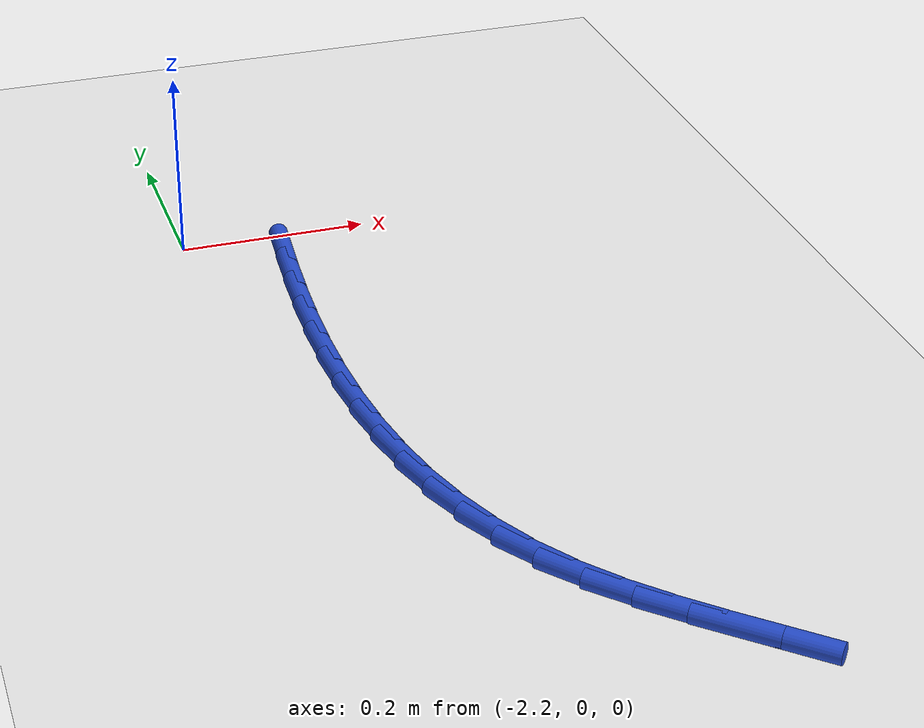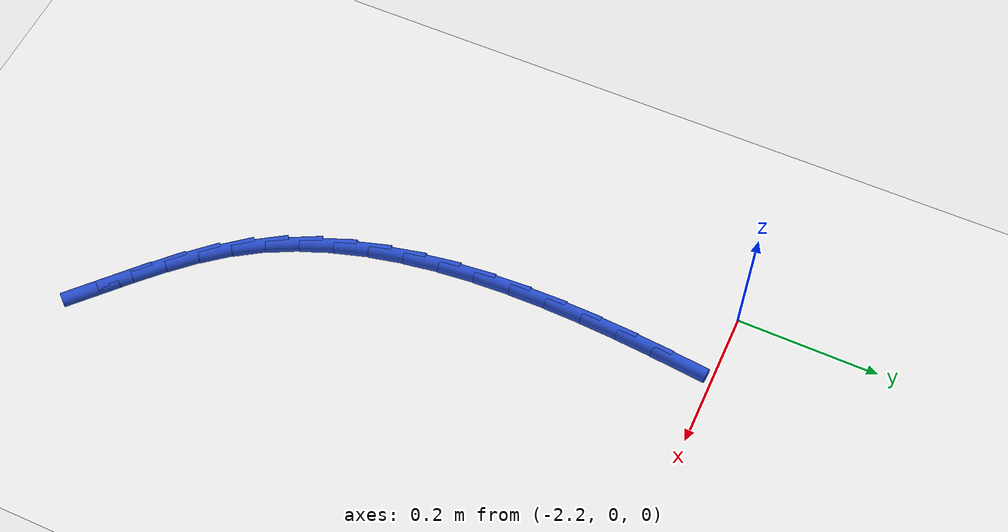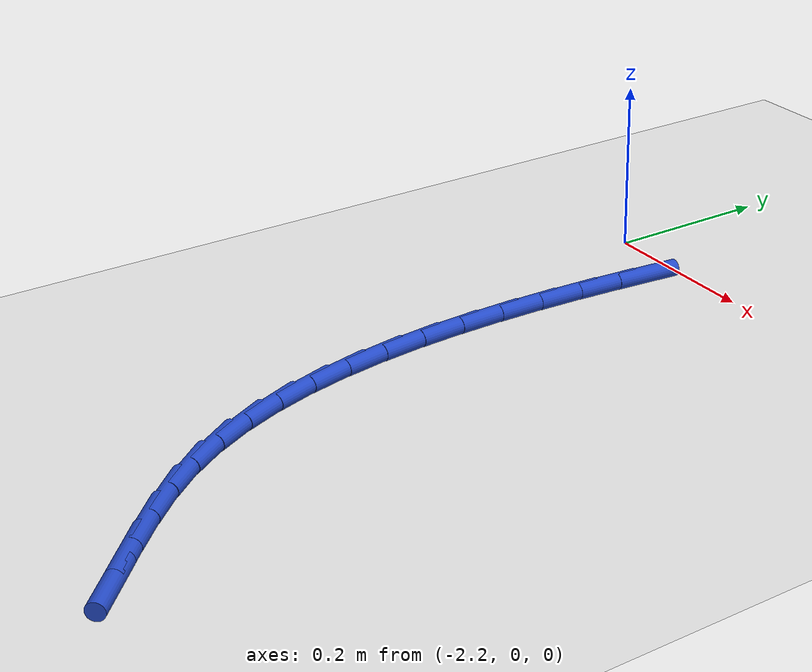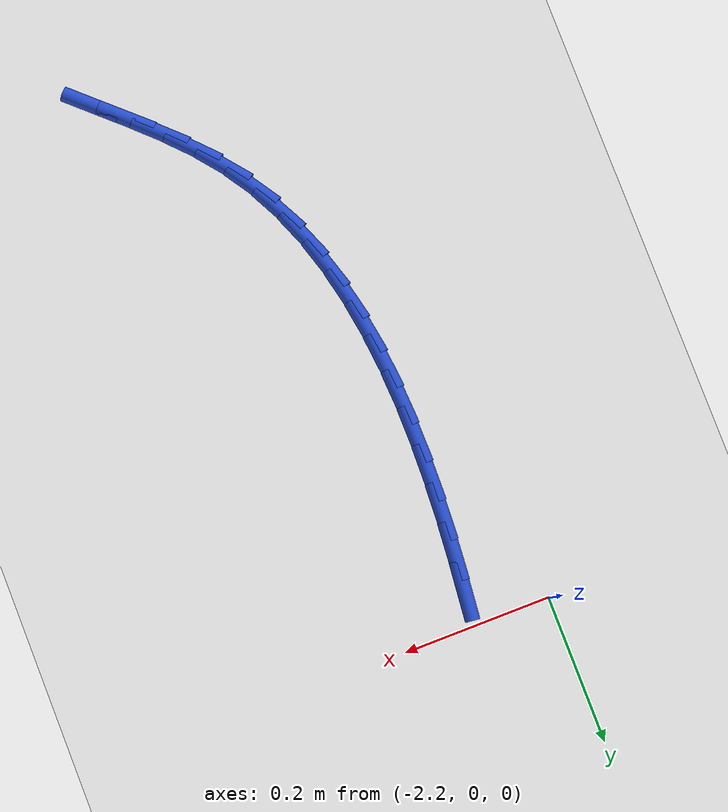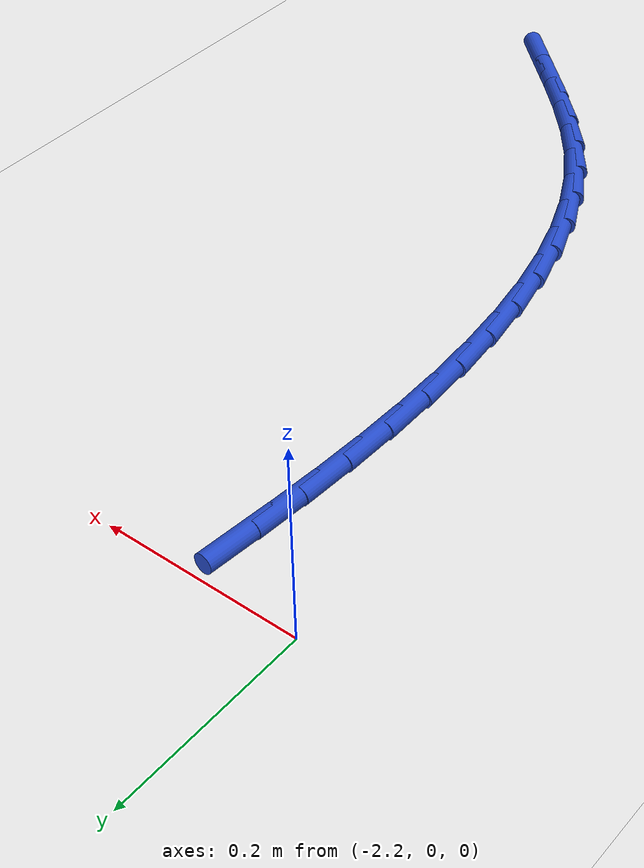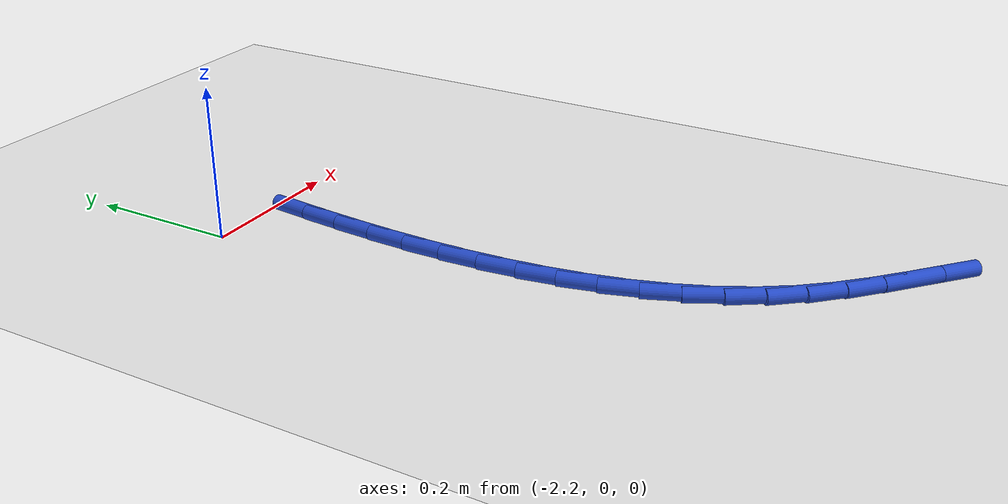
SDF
<sdf version="1.6">
 <world name="default">
  <model name="ground_plane">
   <static>1</static>
   <link name="link">
    <collision name="collision">
     <geometry><plane><normal>0 0 1</normal><size>100 100</size></plane></geometry>
     <surface><friction><ode><mu>100</mu><mu2>50</mu2></ode></friction></surface>
    </collision>
    <visual name="visual">
     <cast_shadows>0</cast_shadows>
     <geometry><plane><normal>0 0 1</normal><size>100 100</size></plane></geometry>
     <material>
      <script><uri>file://media/materials/scripts/gazebo.material</uri><name>Gazebo/WhiteGlow</name></script>
     </material>
    </visual>
   </link>
  </model>
  <model name="line">
   <link name="link_71">
    <pose>-2.100406225770752 -0.04766990206161517 0.01 0 1.57 1.47113770201214</pose>
    <collision name="collision">
     <geometry><cylinder><radius>0.01</radius><length>0.08</length></cylinder></geometry>
    </collision>
    <visual name="visual">
     <material>
      <script><name>Gazebo/Blue</name><uri>file://media/materials/scripts/gazebo.material</uri></script>
     </material>
     <geometry><cylinder><radius>0.01</radius><length>0.08</length></cylinder></geometry>
    </visual>
   </link>
   <link name="link_72">
    <pose>-2.1057387552013807 -0.1010005976876013 0.01 0 1.57 1.491995167769916</pose>
    <collision name="collision">
     <geometry><cylinder><radius>0.01</radius><length>0.08</length></cylinder></geometry>
    </collision>
    <visual name="visual">
     <material>
      <script><name>Gazebo/Blue</name><uri>file://media/materials/scripts/gazebo.material</uri></script>
     </material>
     <geometry><cylinder><radius>0.01</radius><length>0.08</length></cylinder></geometry>
    </visual>
   </link>
   <link name="link_73">
    <pose>-2.109968871426125 -0.15457032739234103 0.01 0 1.57 1.5174750359505025</pose>
    <collision name="collision">
     <geometry><cylinder><radius>0.01</radius><length>0.08</length></cylinder></geometry>
    </collision>
    <visual name="visual">
     <material>
      <script><name>Gazebo/Blue</name><uri>file://media/materials/scripts/gazebo.material</uri></script>
     </material>
     <geometry><cylinder><radius>0.01</radius><length>0.08</length></cylinder></geometry>
    </visual>
   </link>
   <link name="link_74">
    <pose>-2.1128270162924805 -0.20812183723894773 0.01 0 1.57 1.547964223863295</pose>
    <collision name="collision">
     <geometry><cylinder><radius>0.01</radius><length>0.08</length></cylinder></geometry>
    </collision>
    <visual name="visual">
     <material>
      <script><name>Gazebo/Blue</name><uri>file://media/materials/scripts/gazebo.material</uri></script>
     </material>
     <geometry><cylinder><radius>0.01</radius><length>0.08</length></cylinder></geometry>
    </visual>
   </link>
   <link name="link_75">
    <pose>-2.1140436316479376 -0.2613978732905372 0.01 0 1.57 -1.557630065508331</pose>
    <collision name="collision">
     <geometry><cylinder><radius>0.01</radius><length>0.08</length></cylinder></geometry>
    </collision>
    <visual name="visual">
     <material>
      <script><name>Gazebo/Blue</name><uri>file://media/materials/scripts/gazebo.material</uri></script>
     </material>
     <geometry><cylinder><radius>0.01</radius><length>0.08</length></cylinder></geometry>
    </visual>
   </link>
   <link name="link_76">
    <pose>-2.113349159339993 -0.31414118161022453 0.01 0 1.57 -1.515512312926246</pose>
    <collision name="collision">
     <geometry><cylinder><radius>0.01</radius><length>0.08</length></cylinder></geometry>
    </collision>
    <visual name="visual">
     <material>
      <script><name>Gazebo/Blue</name><uri>file://media/materials/scripts/gazebo.material</uri></script>
     </material>
     <geometry><cylinder><radius>0.01</radius><length>0.08</length></cylinder></geometry>
    </visual>
   </link>
   <link name="link_77">
    <pose>-2.110474041216138 -0.36609450826112483 0.01 0 1.57 -1.4665647341635364</pose>
    <collision name="collision">
     <geometry><cylinder><radius>0.01</radius><length>0.08</length></cylinder></geometry>
    </collision>
    <visual name="visual">
     <material>
      <script><name>Gazebo/Blue</name><uri>file://media/materials/scripts/gazebo.material</uri></script>
     </material>
     <geometry><cylinder><radius>0.01</radius><length>0.08</length></cylinder></geometry>
    </visual>
   </link>
   <link name="link_78">
    <pose>-2.1051487191238674 -0.4170005993063538 0.01 0 1.57 -1.4100025238129956</pose>
    <collision name="collision">
     <geometry><cylinder><radius>0.01</radius><length>0.08</length></cylinder></geometry>
    </collision>
    <visual name="visual">
     <material>
      <script><name>Gazebo/Blue</name><uri>file://media/materials/scripts/gazebo.material</uri></script>
     </material>
     <geometry><cylinder><radius>0.01</radius><length>0.08</length></cylinder></geometry>
    </visual>
   </link>
   <link name="link_79">
    <pose>-2.0971036349106744 -0.4666022008090248 0.01 0 1.57 -1.3450198231208317</pose>
    <collision name="collision">
     <geometry><cylinder><radius>0.01</radius><length>0.08</length></cylinder></geometry>
    </collision>
    <visual name="visual">
     <material>
      <script><name>Gazebo/Blue</name><uri>file://media/materials/scripts/gazebo.material</uri></script>
     </material>
     <geometry><cylinder><radius>0.01</radius><length>0.08</length></cylinder></geometry>
    </visual>
   </link>
   <link name="link_80">
    <pose>-2.0860692304240533 -0.514642058832254 0.01 0 1.57 -1.270885279352087</pose>
    <collision name="collision">
     <geometry><cylinder><radius>0.01</radius><length>0.08</length></cylinder></geometry>
    </collision>
    <visual name="visual">
     <material>
      <script><name>Gazebo/Blue</name><uri>file://media/materials/scripts/gazebo.material</uri></script>
     </material>
     <geometry><cylinder><radius>0.01</radius><length>0.08</length></cylinder></geometry>
    </visual>
   </link>
   <link name="link_81">
    <pose>-2.0717759475114956 -0.5608629194391561 0.01 0 1.57 -1.1870938370674684</pose>
    <collision name="collision">
     <geometry><cylinder><radius>0.01</radius><length>0.08</length></cylinder></geometry>
    </collision>
    <visual name="visual">
     <material>
      <script><name>Gazebo/Blue</name><uri>file://media/materials/scripts/gazebo.material</uri></script>
     </material>
     <geometry><cylinder><radius>0.01</radius><length>0.08</length></cylinder></geometry>
    </visual>
   </link>
   <link name="link_82">
    <pose>-2.0539542280204968 -0.6050075286928469 0.01 0 1.57 -1.0935777304497902</pose>
    <collision name="collision">
     <geometry><cylinder><radius>0.01</radius><length>0.08</length></cylinder></geometry>
    </collision>
    <visual name="visual">
     <material>
      <script><name>Gazebo/Blue</name><uri>file://media/materials/scripts/gazebo.material</uri></script>
     </material>
     <geometry><cylinder><radius>0.01</radius><length>0.08</length></cylinder></geometry>
    </visual>
   </link>
   <link name="link_83">
    <pose>-2.03233451379855 -0.64681863265644 0.01 0 1.57 -0.9909838540848346</pose>
    <collision name="collision">
     <geometry><cylinder><radius>0.01</radius><length>0.08</length></cylinder></geometry>
    </collision>
    <visual name="visual">
     <material>
      <script><name>Gazebo/Blue</name><uri>file://media/materials/scripts/gazebo.material</uri></script>
     </material>
     <geometry><cylinder><radius>0.01</radius><length>0.08</length></cylinder></geometry>
    </visual>
   </link>
   <link name="link_84">
    <pose>-2.006648352828067 -0.6860401061080095 0.01 0 1.57 -0.8898536171266744</pose>
    <collision name="collision">
     <geometry><cylinder><radius>0.01</radius><length>0.08</length></cylinder></geometry>
    </collision>
    <visual name="visual">
     <material>
      <script><name>Gazebo/Blue</name><uri>file://media/materials/scripts/gazebo.material</uri></script>
     </material>
     <geometry><cylinder><radius>0.01</radius><length>0.08</length></cylinder></geometry>
    </visual>
   </link>
   <link name="link_85">
    <pose>-1.9769276401197875 -0.7227223019757028 0.01 0 1.57 -0.8132991699891059</pose>
    <collision name="collision">
     <geometry><cylinder><radius>0.01</radius><length>0.08</length></cylinder></geometry>
    </collision>
    <visual name="visual">
     <material>
      <script><name>Gazebo/Blue</name><uri>file://media/materials/scripts/gazebo.material</uri></script>
     </material>
     <geometry><cylinder><radius>0.01</radius><length>0.08</length></cylinder></geometry>
    </visual>
   </link>
   <link name="link_86">
    <pose>-1.9439100345474045 -0.7576357441322972 0.01 0 1.57 -0.7644353105496154</pose>
    <collision name="collision">
     <geometry><cylinder><radius>0.01</radius><length>0.08</length></cylinder></geometry>
    </collision>
    <visual name="visual">
     <material>
      <script><name>Gazebo/Blue</name><uri>file://media/materials/scripts/gazebo.material</uri></script>
     </material>
     <geometry><cylinder><radius>0.01</radius><length>0.08</length></cylinder></geometry>
    </visual>
   </link>
   <link name="link_87">
    <pose>-1.9084344707003116 -0.7916542995539404 0.01 0 1.57 -0.7418617665737048</pose>
    <collision name="collision">
     <geometry><cylinder><radius>0.01</radius><length>0.08</length></cylinder></geometry>
    </collision>
    <visual name="visual">
     <material>
      <script><name>Gazebo/Blue</name><uri>file://media/materials/scripts/gazebo.material</uri></script>
     </material>
     <geometry><cylinder><radius>0.01</radius><length>0.08</length></cylinder></geometry>
    </visual>
   </link>
   <link name="link_88">
    <pose>-1.871339883167905 -0.8256518352167793 0.01 0 1.57 -0.7438368056804274</pose>
    <collision name="collision">
     <geometry><cylinder><radius>0.01</radius><length>0.08</length></cylinder></geometry>
    </collision>
    <visual name="visual">
     <material>
      <script><name>Gazebo/Blue</name><uri>file://media/materials/scripts/gazebo.material</uri></script>
     </material>
     <geometry><cylinder><radius>0.01</radius><length>0.08</length></cylinder></geometry>
    </visual>
   </link>
  </model>
 </world>
</sdf>
